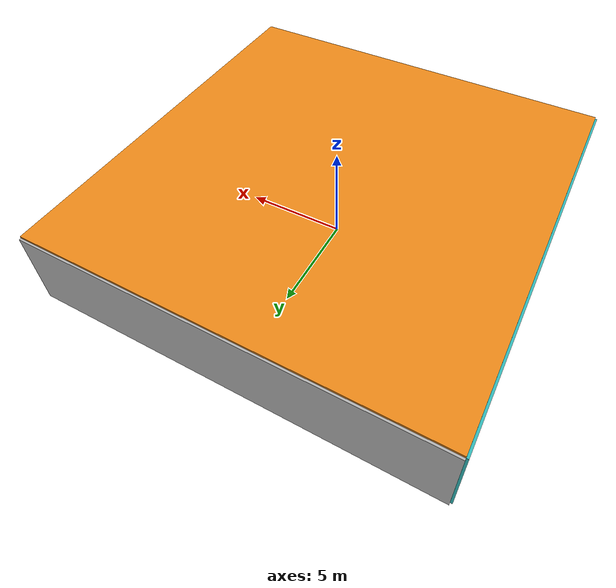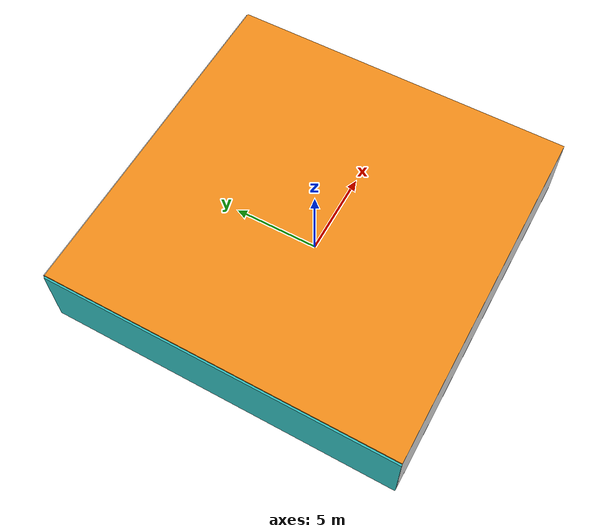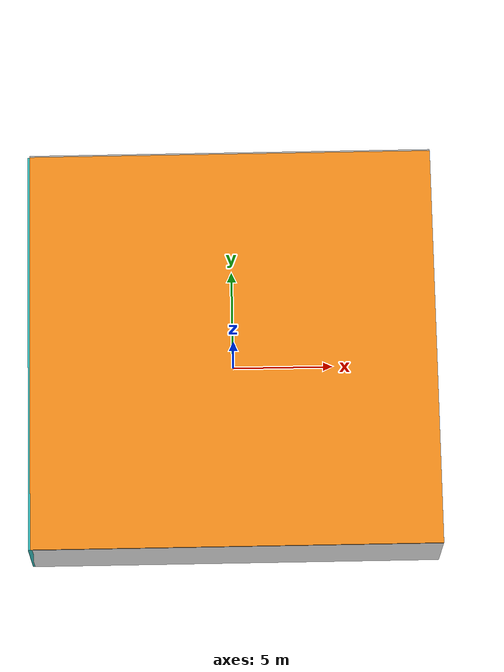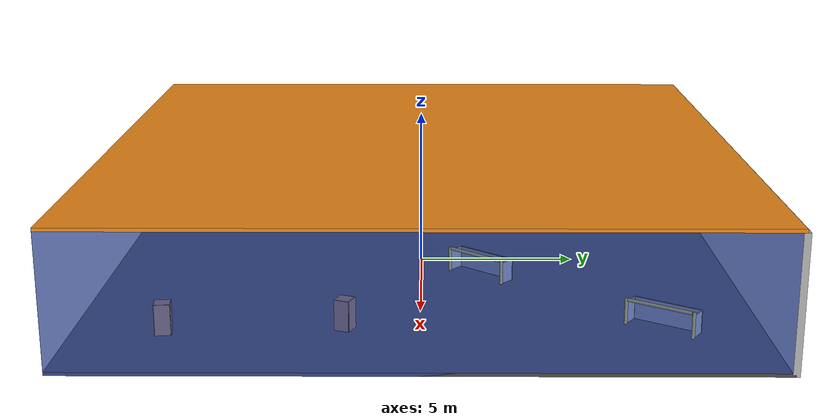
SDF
<sdf version="1.4">
 <world name="default">
  <physics type="ode">
   <max_step_size>0.001</max_step_size>
   <real_time_factor>1</real_time_factor>
   <real_time_update_rate>1000</real_time_update_rate>
   <gravity>0 0 -9.8</gravity>
  </physics>
  <scene><ambient>0.4 0.4 0.4 1</ambient><background>0.7 0.7 0.7 1</background><shadows>1</shadows></scene>
  <model name="Surrounding">
   <static>1</static>
   <link name="Ceiling">
    <collision name="Ceiling_Collision"><geometry><box><size>20 20 0.1</size></box></geometry></collision>
    <visual name="Ceiling_Visual">
     <geometry><box><size>20 20 0.1</size></box></geometry>
     <material>
      <script><uri>file://media/materials/scripts/gazebo.material</uri><name>Gazebo/Orange</name></script>
     </material>
    </visual>
    <pose>0 0 4.05 0 0 0</pose>
   </link>
   <link name="Wall_South">
    <collision name="Wall_South_Collision">
     <geometry><box><size>20 0 4</size></box></geometry>
     <pose>0 0 2 0 -0 0</pose>
    </collision>
    <visual name="Wall_South_Visual">
     <pose>0 0 2 0 -0 0</pose>
     <geometry><box><size>20 0 4</size></box></geometry>
     <material>
      <script><uri>file://media/materials/scripts/gazebo.material</uri><name>Gazebo/White</name></script>
     </material>
    </visual>
    <velocity_decay><linear>0</linear><angular>0</angular></velocity_decay>
    <pose>0 -10 0 0 -0 0</pose>
   </link>
   <link name="Wall_East">
    <collision name="Wall_21_Collision">
     <geometry><box><size>20 0 4</size></box></geometry>
     <pose>0 0 2 0 -0 0</pose>
    </collision>
    <visual name="Wall_21_Visual">
     <pose>0 0 2 0 -0 0</pose>
     <geometry><box><size>20 0 4</size></box></geometry>
     <material>
      <script><uri>file://media/materials/scripts/gazebo.material</uri><name>Gazebo/BlueTransparent</name></script>
     </material>
    </visual>
    <velocity_decay><linear>0</linear><angular>0</angular></velocity_decay>
    <pose>10 0 0 0 -0 1.5708</pose>
   </link>
   <link name="Wall_North">
    <collision name="Wall_22_Collision">
     <geometry><box><size>20 0.2 4</size></box></geometry>
     <pose>0 0 2 0 -0 0</pose>
    </collision>
    <visual name="Wall_22_Visual">
     <pose>0 0 2 0 -0 0</pose>
     <geometry><box><size>20 0.2 4</size></box></geometry>
     <material>
      <script><uri>file://media/materials/scripts/gazebo.material</uri><name>Gazebo/PioneerBody</name></script>
     </material>
    </visual>
    <velocity_decay><linear>0</linear><angular>0</angular></velocity_decay>
    <pose>0 10 0 0 -0 0</pose>
   </link>
   <link name="Wall_West">
    <collision name="Wall_23_Collision">
     <geometry><box><size>20 0.2 4</size></box></geometry>
     <pose>0 0 2 0 -0 0</pose>
    </collision>
    <visual name="Wall_23_Visual">
     <pose>0 0 2 0 -0 0</pose>
     <geometry><box><size>20 0.2 4</size></box></geometry>
     <material>
      <script><uri>file://media/materials/scripts/gazebo.material</uri><name>Gazebo/TurquoiseGlow</name></script>
     </material>
    </visual>
    <velocity_decay><linear>0</linear><angular>0</angular></velocity_decay>
    <pose>-10 0 0 0 0 -1.5708</pose>
   </link>
   <link name="Ground_link">
    <collision name="collision">
     <pose>0 0 .05 0 -0 0</pose>
     <geometry><box><size>20 20 0.1</size></box></geometry>
    </collision>
    <visual name="visual">
     <pose>0 0 .05 0 -0 0</pose>
     <geometry><box><size>20 20 0.1</size></box></geometry>
     <material>
      <script><uri>file://media/materials/scripts/gazebo.material</uri><name>Gazebo/Road</name></script>
     </material>
    </visual>
   </link>
   <static>1</static>
  </model>
  <spherical_coordinates>
   <surface_model>EARTH_WGS84</surface_model>
   <latitude_deg>0</latitude_deg>
   <longitude_deg>0</longitude_deg>
   <elevation>0</elevation>
   <heading_deg>0</heading_deg>
  </spherical_coordinates>
  <light name="lightball_0" type="diffuse">
   <diffuse>0.8 0.8 0.8 1</diffuse>
   <specular>0.2 0.2 0.2 1</specular>
   <attenuation>
    <range>100</range>
    <constant>0.7</constant>
    <linear>0.01</linear>
    <quadratic>0.001</quadratic>
   </attenuation>
   <direction>-0.5 0.1 -0.9</direction>
   <pose>-0.676043736717 8.64626579483 0.992867543647 0 0 0</pose>
  </light>
  <light name="lightball_1" type="diffuse">
   <diffuse>0.8 0.8 0.8 1</diffuse>
   <specular>0.2 0.2 0.2 1</specular>
   <attenuation>
    <range>100</range>
    <constant>0.7</constant>
    <linear>0.01</linear>
    <quadratic>0.001</quadratic>
   </attenuation>
   <direction>-0.5 0.1 -0.9</direction>
   <pose>2.88613151138 -4.07368018597 0.727850537024 0 0 0</pose>
  </light>
  <light name="lightball_2" type="diffuse">
   <diffuse>0.8 0.8 0.8 1</diffuse>
   <specular>0.2 0.2 0.2 1</specular>
   <attenuation>
    <range>100</range>
    <constant>0.7</constant>
    <linear>0.01</linear>
    <quadratic>0.001</quadratic>
   </attenuation>
   <direction>-0.5 0.1 -0.9</direction>
   <pose>5.10252683282 -8.23660727736 2.23485383458 0 0 0</pose>
  </light>
  <light name="lightball_3" type="diffuse">
   <diffuse>0.8 0.8 0.8 1</diffuse>
   <specular>0.2 0.2 0.2 1</specular>
   <attenuation>
    <range>100</range>
    <constant>0.7</constant>
    <linear>0.01</linear>
    <quadratic>0.001</quadratic>
   </attenuation>
   <direction>-0.5 0.1 -0.9</direction>
   <pose>-5.03355775825 -7.26020232877 3.47146963655 0 0 0</pose>
  </light>
  <light name="lightball_4" type="diffuse">
   <diffuse>0.8 0.8 0.8 1</diffuse>
   <specular>0.2 0.2 0.2 1</specular>
   <attenuation>
    <range>100</range>
    <constant>0.7</constant>
    <linear>0.01</linear>
    <quadratic>0.001</quadratic>
   </attenuation>
   <direction>-0.5 0.1 -0.9</direction>
   <pose>-1.62885967258 -5.49330797578 1.94230457333 0 0 0</pose>
  </light>
  <light name="lightball_5" type="diffuse">
   <diffuse>0.8 0.8 0.8 1</diffuse>
   <specular>0.2 0.2 0.2 1</specular>
   <attenuation>
    <range>100</range>
    <constant>0.7</constant>
    <linear>0.01</linear>
    <quadratic>0.001</quadratic>
   </attenuation>
   <direction>-0.5 0.1 -0.9</direction>
   <pose>-1.20844210937 -4.99143697865 3.14282787769 0 0 0</pose>
  </light>
  <light name="lightball_6" type="diffuse">
   <diffuse>0.8 0.8 0.8 1</diffuse>
   <specular>0.2 0.2 0.2 1</specular>
   <attenuation>
    <range>100</range>
    <constant>0.7</constant>
    <linear>0.01</linear>
    <quadratic>0.001</quadratic>
   </attenuation>
   <direction>-0.5 0.1 -0.9</direction>
   <pose>-3.6957632922 3.63574183647 0.595506176706 0 0 0</pose>
  </light>
  <light name="lightball_7" type="diffuse">
   <diffuse>0.8 0.8 0.8 1</diffuse>
   <specular>0.2 0.2 0.2 1</specular>
   <attenuation>
    <range>100</range>
    <constant>0.7</constant>
    <linear>0.01</linear>
    <quadratic>0.001</quadratic>
   </attenuation>
   <direction>-0.5 0.1 -0.9</direction>
   <pose>-2.31776475146 8.77883979733 2.04046996195 0 0 0</pose>
  </light>
  <light name="lightball_8" type="diffuse">
   <diffuse>0.8 0.8 0.8 1</diffuse>
   <specular>0.2 0.2 0.2 1</specular>
   <attenuation>
    <range>100</range>
    <constant>0.7</constant>
    <linear>0.01</linear>
    <quadratic>0.001</quadratic>
   </attenuation>
   <direction>-0.5 0.1 -0.9</direction>
   <pose>-7.78297361574 8.09352992739 2.88273065944 0 0 0</pose>
  </light>
  <light name="lightball_9" type="diffuse">
   <diffuse>0.8 0.8 0.8 1</diffuse>
   <specular>0.2 0.2 0.2 1</specular>
   <attenuation>
    <range>100</range>
    <constant>0.7</constant>
    <linear>0.01</linear>
    <quadratic>0.001</quadratic>
   </attenuation>
   <direction>-0.5 0.1 -0.9</direction>
   <pose>-1.15485330396 -5.17768175799 1.46164306006 0 0 0</pose>
  </light>
  <light name="lightball_10" type="diffuse">
   <diffuse>0.8 0.8 0.8 1</diffuse>
   <specular>0.2 0.2 0.2 1</specular>
   <attenuation>
    <range>100</range>
    <constant>0.7</constant>
    <linear>0.01</linear>
    <quadratic>0.001</quadratic>
   </attenuation>
   <direction>-0.5 0.1 -0.9</direction>
   <pose>9.0736048926 6.04587286241 3.17479748236 0 0 0</pose>
  </light>
  <light name="lightball_11" type="diffuse">
   <diffuse>0.8 0.8 0.8 1</diffuse>
   <specular>0.2 0.2 0.2 1</specular>
   <attenuation>
    <range>100</range>
    <constant>0.7</constant>
    <linear>0.01</linear>
    <quadratic>0.001</quadratic>
   </attenuation>
   <direction>-0.5 0.1 -0.9</direction>
   <pose>8.86744918607 -8.22416859992 0.520206229056 0 0 0</pose>
  </light>
  <include><uri>model://table</uri><pose>-6.89586275534 1.0003604869 0 0 0 0.0378002325651</pose></include>
  <include>
   <uri>model://robocup_3Dsim_goal</uri>
   <pose>2.11746407131 1.73593813887 0 0 0 2.42971367125</pose>
  </include>
  <include><uri>model://cabinet</uri><pose>7.08853418637 -7.34167469327 0 0 0 0.110100392159</pose></include>
  <include><uri>model://cabinet</uri><pose>6.73113767841 -2.16956891379 0 0 0 1.18867166566</pose></include>
  <include>
   <uri>model://robocup_3Dsim_goal</uri>
   <pose>6.89911082654 6.85240848912 0 0 0 2.5474136047</pose>
  </include>
 </world>
</sdf>

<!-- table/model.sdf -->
<sdf version="1.5">
  <model name="table">
    <static>true</static>
    <link name="link">
      <collision name="surface">
        <pose>0 0 1.0 0 0 0</pose>
        <geometry>
          <box>
            <size>1.5 0.8 0.03</size>
          </box>
        </geometry>
        <surface>
          <friction>
            <ode>
              <mu>0.6</mu>
              <mu2>0.6</mu2>
            </ode>
          </friction>
        </surface>
      </collision>
      <visual name="visual1">
        <pose>0 0 1.0 0 0 0</pose>
        <geometry>
          <box>
            <size>1.5 0.8 0.03</size>
          </box>
        </geometry>
        <material>
          <script>
            <uri>model://media/materials/scripts/gazebo.material</uri>
            <name>Gazebo/Wood</name>
          </script>
        </material>
      </visual>
      <collision name="front_left_leg">
        <pose>0.68 0.38 0.5 0 0 0</pose>
        <geometry>
          <cylinder>
            <radius>0.02</radius>
            <length>1.0</length>
          </cylinder>
        </geometry>
      </collision>
      <visual name="front_left_leg">
        <pose>0.68 0.38 0.5 0 0 0</pose>
        <geometry>
          <cylinder>
            <radius>0.02</radius>
            <length>1.0</length>
          </cylinder>
        </geometry>
        <material>
          <script>
            <uri>model://media/materials/scripts/gazebo.material</uri>
            <name>Gazebo/Grey</name>
          </script>
        </material>
      </visual>
      <collision name="front_right_leg">
        <pose>0.68 -0.38 0.5 0 0 0</pose>
        <geometry>
          <cylinder>
            <radius>0.02</radius>
            <length>1.0</length>
          </cylinder>
        </geometry>
      </collision>
      <visual name="front_right_leg">
        <pose>0.68 -0.38 0.5 0 0 0</pose>
        <geometry>
          <cylinder>
            <radius>0.02</radius>
            <length>1.0</length>
          </cylinder>
        </geometry>
        <material>
          <script>
            <uri>model://media/materials/scripts/gazebo.material</uri>
            <name>Gazebo/Grey</name>
          </script>
        </material>
      </visual>
      <collision name="back_right_leg">
        <pose>-0.68 -0.38 0.5 0 0 0</pose>
        <geometry>
          <cylinder>
            <radius>0.02</radius>
            <length>1.0</length>
          </cylinder>
        </geometry>
      </collision>
      <visual name="back_right_leg">
        <pose>-0.68 -0.38 0.5 0 0 0</pose>
        <geometry>
          <cylinder>
            <radius>0.02</radius>
            <length>1.0</length>
          </cylinder>
        </geometry>
        <material>
          <script>
            <uri>model://media/materials/scripts/gazebo.material</uri>
            <name>Gazebo/Grey</name>
          </script>
        </material>
      </visual>
      <collision name="back_left_leg">
        <pose>-0.68 0.38 0.5 0 0 0</pose>
        <geometry>
          <cylinder>
            <radius>0.02</radius>
            <length>1.0</length>
          </cylinder>
        </geometry>
      </collision>
      <visual name="back_left_leg">
        <pose>-0.68 0.38 0.5 0 0 0</pose>
        <geometry>
          <cylinder>
            <radius>0.02</radius>
            <length>1.0</length>
          </cylinder>
        </geometry>
        <material>
          <script>
            <uri>model://media/materials/scripts/gazebo.material</uri>
            <name>Gazebo/Grey</name>
          </script>
        </material>
      </visual>
    </link>
  </model>
</sdf>

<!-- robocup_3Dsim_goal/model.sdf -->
<sdf version="1.5">
  <model name="robocup_3d_goal">
    <static>true</static>
    <link name="left_post">
      <pose>0 1.05 0.45 0 0 0</pose>
      <collision name="collision">
        <geometry>
          <cylinder>
            <radius>0.05</radius>
            <length>0.9</length>
          </cylinder>
        </geometry>
      </collision>
      <visual name="visual">
        <geometry>
          <cylinder>
            <radius>0.05</radius>
            <length>0.9</length>
          </cylinder>
        </geometry>
        <material>
          <script>
            <uri>file://media/materials/scripts/gazebo.material</uri>
            <name>Gazebo/ZincYellow</name>
          </script>
        </material>
      </visual>
    </link>
    <link name="left_support_horiz_lower">
      <pose>0.30 1.05 0.01 0 0 0</pose>
      <collision name="collision">
        <geometry>
          <box>
            <size>0.50 0.02 0.02</size>
          </box>
        </geometry>
      </collision>
      <visual name="visual">
        <geometry>
          <box>
            <size>0.50 0.02 0.02</size>
          </box>
        </geometry>
        <material>
          <script>
            <uri>file://media/materials/scripts/gazebo.material</uri>
            <name>Gazebo/White</name>
          </script>
        </material>
      </visual>
    </link>
    <link name="left_support_horiz_upper">
      <pose>0.30 1.05 0.79 0 0 0</pose>
      <collision name="collision">
        <geometry>
          <box>
            <size>0.50 0.02 0.02</size>
          </box>
        </geometry>
      </collision>
      <visual name="visual">
        <geometry>
          <box>
            <size>0.50 0.02 0.02</size>
          </box>
        </geometry>
        <material>
          <script>
            <uri>file://media/materials/scripts/gazebo.material</uri>
            <name>Gazebo/White</name>
          </script>
        </material>
      </visual>
    </link>
    <link name="left_support_vertical">
      <pose>0.56 1.05 0.4 0 1.5708 0</pose>
      <collision name="collision">
        <geometry>
          <box>
            <size>0.80 0.02 0.02</size>
          </box>
        </geometry>
      </collision>
      <visual name="visual">
        <geometry>
          <box>
            <size>0.80 0.02 0.02</size>
          </box>
        </geometry>
        <material>
          <script>
            <uri>file://media/materials/scripts/gazebo.material</uri>
            <name>Gazebo/White</name>
          </script>
        </material>
      </visual>
    </link>
    <link name="right_support_horiz_lower">
      <pose>0.30 -1.05 0.01 0 0 0</pose>
      <collision name="collision">
        <geometry>
          <box>
            <size>0.50 0.02 0.02</size>
          </box>
        </geometry>
      </collision>
      <visual name="visual">
        <geometry>
          <box>
            <size>0.50 0.02 0.02</size>
          </box>
        </geometry>
        <material>
          <script>
            <uri>file://media/materials/scripts/gazebo.material</uri>
            <name>Gazebo/White</name>
          </script>
        </material>
      </visual>
    </link>
    <link name="right_support_horiz_upper">
      <pose>0.30 -1.05 0.79 0 0 0</pose>
      <collision name="collision">
        <geometry>
          <box>
            <size>0.50 0.02 0.02</size>
          </box>
        </geometry>
      </collision>
      <visual name="visual">
        <geometry>
          <box>
            <size>0.50 0.02 0.02</size>
          </box>
        </geometry>
        <material>
          <script>
            <uri>file://media/materials/scripts/gazebo.material</uri>
            <name>Gazebo/White</name>
          </script>
        </material>
      </visual>
    </link>
    <link name="right_support_vertical">
      <pose>0.56 -1.05 0.4 0 1.5708 0</pose>
      <collision name="collision">
        <geometry>
          <box>
            <size>0.80 0.02 0.02</size>
          </box>
        </geometry>
      </collision>
      <visual name="visual">
        <geometry>
          <box>
            <size>0.80 0.02 0.02</size>
          </box>
        </geometry>
        <material>
          <script>
            <uri>file://media/materials/scripts/gazebo.material</uri>
            <name>Gazebo/White</name>
          </script>
        </material>
      </visual>
    </link>
    <link name="center_support_horiz_lower">
      <pose>0.56 0 0.01 0 1.5708 0</pose>
      <collision name="collision">
        <geometry>
          <box>
            <size>0.02 2.08 0.02</size>
          </box>
        </geometry>
      </collision>
      <visual name="visual">
        <geometry>
          <box>
            <size>0.02 2.08 0.02</size>
          </box>
        </geometry>
        <material>
          <script>
            <uri>file://media/materials/scripts/gazebo.material</uri>
            <name>Gazebo/White</name>
          </script>
        </material>
      </visual>
    </link>
    <link name="center_support_horiz_upper">
      <pose>0.56 0 0.79 0 1.5708 0</pose>
      <collision name="collision">
        <geometry>
          <box>
            <size>0.02 2.08 0.02</size>
          </box>
        </geometry>
      </collision>
      <visual name="visual">
        <geometry>
          <box>
            <size>0.02 2.08 0.02</size>
          </box>
        </geometry>
        <material>
          <script>
            <uri>file://media/materials/scripts/gazebo.material</uri>
            <name>Gazebo/White</name>
          </script>
        </material>
      </visual>
    </link>
    <link name="right_post">
      <pose>0 -1.05 0.45 0 0 0</pose>
      <collision name="collision">
        <geometry>
          <cylinder>
            <radius>0.05</radius>
            <length>0.9</length>
          </cylinder>
        </geometry>
      </collision>
      <visual name="visual">
        <geometry>
          <cylinder>
            <radius>0.05</radius>
            <length>0.9</length>
          </cylinder>
        </geometry>
        <material>
          <script>
            <uri>file://media/materials/scripts/gazebo.material</uri>
            <name>Gazebo/ZincYellow</name>
          </script>
        </material>
      </visual>
    </link>
    <link name="crossbar">
      <pose>0 0 0.85 1.57 1.57 0</pose>
      <collision name="collision">
        <geometry>
          <cylinder>
            <radius>0.05</radius>
            <length>2.0</length>
          </cylinder>
        </geometry>
      </collision>
      <visual name="visual">
        <geometry>
          <cylinder>
            <radius>0.05</radius>
            <length>2.0</length>
          </cylinder>
        </geometry>
        <material>
          <script>
            <uri>file://media/materials/scripts/gazebo.material</uri>
            <name>Gazebo/ZincYellow</name>
          </script>
        </material>
      </visual>
    </link>
    <link name="center_net">
      <pose>0.56 0 0.40 0 0 0</pose>
      <collision name="collision">
        <geometry>
          <box>
            <size>0.01 2.1 0.80</size>
          </box>
        </geometry>
      </collision>
      <visual name="visual">
        <geometry>
          <box>
            <size>0.01 2.1 0.80</size>
          </box>
        </geometry>
        <material>
          <script>
            <uri>model://../model_source/models/robocup09_spl_field/materials/scripts/</uri>
            <uri>model://../model_source/models/robocup09_spl_field/materials/textures/</uri>
            <name>RoboCup/Net</name>
          </script>
        </material>
      </visual>
    </link>
    <link name="left_net">
      <pose>0.30 1.05 0.40 0 0 0</pose>
      <collision name="collision">
        <geometry>
          <box>
            <size>0.50 0.01 0.76</size>
          </box>
        </geometry>
      </collision>
      <visual name="visual">
        <geometry>
          <box>
            <size>0.50 0.01 0.76</size>
          </box>
        </geometry>
        <material>
          <script>
            <uri>model://../model_source/models/robocup09_spl_field/materials/scripts/</uri>
            <uri>model://../model_source/models/robocup09_spl_field/materials/textures/</uri>
            <name>RoboCup/Net</name>
          </script>
        </material>
      </visual>
    </link>
    <link name="right_net">
      <pose>0.30 -1.05 0.40 0 0 0</pose>
      <collision name="collision">
        <geometry>
          <box>
            <size>0.50 0.01 0.76</size>
          </box>
        </geometry>
      </collision>
      <visual name="visual">
        <geometry>
          <box>
            <size>0.50 0.01 0.76</size>
          </box>
        </geometry>
        <material>
          <script>
            <uri>model://../model_source/models/robocup09_spl_field/materials/scripts/</uri>
            <uri>model://../model_source/models/robocup09_spl_field/materials/textures/</uri>
            <name>RoboCup/Net</name>
          </script>
        </material>
      </visual>
    </link>
  </model>
</sdf>

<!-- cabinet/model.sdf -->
<sdf version="1.5">
  <model name="cabinet">
    <static>true</static>
    <link name="cabinet_bottom_plate">
      <inertial>
        <pose>0 0 -1 0 0 0</pose>
        <inertia>
          <ixx>2.050000</ixx>
          <ixy>0</ixy>
          <ixz>0</ixz>
          <iyy>2.050000</iyy>
          <iyz>0</iyz>
          <izz>2.050000</izz>
        </inertia>
        <mass>25.000000</mass>
      </inertial>
      <collision name="cabinet_bottom_plate_geom">
        <pose>0 0 0.010000 0 0 0</pose>
        <geometry>
          <box>
            <size>0.450000 0.450000 0.020000</size>
          </box>
        </geometry>
      </collision>
      <visual name="cabinet_bottom_plate_geom_visual">
        <pose>0 0 0.010000 0 0 0</pose>
        <geometry>
          <box>
            <size>0.450000 0.450000 0.020000</size>
          </box>
        </geometry>
        <material>
          <script>
            <uri>model://media/materials/scripts/gazebo.material</uri>
            <name>Gazebo/Wood</name>
          </script>
        </material>
      </visual>
      <collision name="cabinet_bottom_plate_geom_cabinet_back_plate">
        <pose>0.235000 0 0.510000 0 0 0</pose>
        <geometry>
          <box>
            <size>0.020000 0.450000 1.020000</size>
          </box>
        </geometry>
      </collision>
      <visual name="cabinet_bottom_plate_geom_cabinet_back_plate_visual">
        <pose>0.235000 0 0.510000 0 0 0</pose>
        <geometry>
          <box>
            <size>0.020000 0.450000 1.020000</size>
          </box>
        </geometry>
        <material>
          <script>
            <uri>model://media/materials/scripts/gazebo.material</uri>
            <name>Gazebo/Wood</name>
          </script>
        </material>
      </visual>
      <collision name="cabinet_bottom_plate_geom_cabinet_left_plate">
        <pose>0 0.235000 0.510000 0 0 0</pose>
        <geometry>
          <box>
            <size>0.450000 0.020000 1.020000</size>
          </box>
        </geometry>
      </collision>
      <visual name="cabinet_bottom_plate_geom_cabinet_left_plate_visual">
        <pose>0 0.235000 0.510000 0 0 0</pose>
        <geometry>
          <box>
            <size>0.450000 0.020000 1.020000</size>
          </box>
        </geometry>
        <material>
          <script>
            <uri>model://media/materials/scripts/gazebo.material</uri>
            <name>Gazebo/Wood</name>
          </script>
        </material>
      </visual>
      <collision name="cabinet_bottom_plate_geom_cabinet_middle_plate">
        <pose>0 0 0.510000 0 0 0</pose>
        <geometry>
          <box>
            <size>0.450000 0.450000 0.020000</size>
          </box>
        </geometry>
      </collision>
      <visual name="cabinet_bottom_plate_geom_cabinet_middle_plate_visual">
        <pose>0 0 0.510000 0 0 0</pose>
        <geometry>
          <box>
            <size>0.450000 0.450000 0.020000</size>
          </box>
        </geometry>
        <material>
          <script>
            <uri>model://media/materials/scripts/gazebo.material</uri>
            <name>Gazebo/Wood</name>
          </script>
        </material>
      </visual>
      <collision name="cabinet_bottom_plate_geom_cabinet_right_plate">
        <pose>0 -0.235000 0.510000 0 0 0</pose>
        <geometry>
          <box>
            <size>0.450000 0.020000 1.020000</size>
          </box>
        </geometry>
      </collision>
      <visual name="cabinet_bottom_plate_geom_cabinet_right_plate_visual">
        <pose>0 -0.235000 0.510000 0 0 0</pose>
        <geometry>
          <box>
            <size>0.450000 0.020000 1.020000</size>
          </box>
        </geometry>
        <material>
          <script>
            <uri>model://media/materials/scripts/gazebo.material</uri>
            <name>Gazebo/Wood</name>
          </script>
        </material>
      </visual>
      <collision name="cabinet_bottom_plate_geom_cabinet_top_plate">
        <pose>0 0 1.010000 0 0 0</pose>
        <geometry>
          <box>
            <size>0.450000 0.450000 0.020000</size>
          </box>
        </geometry>
      </collision>
      <visual name="cabinet_bottom_plate_geom_cabinet_top_plate_visual">
        <pose>0 0 1.010000 0 0 0</pose>
        <geometry>
          <box>
            <size>0.450000 0.450000 0.020000</size>
          </box>
        </geometry>
        <material>
          <script>
            <uri>model://media/materials/scripts/gazebo.material</uri>
            <name>Gazebo/Wood</name>
          </script>
        </material>
      </visual>
    </link>
  </model>
</sdf>
